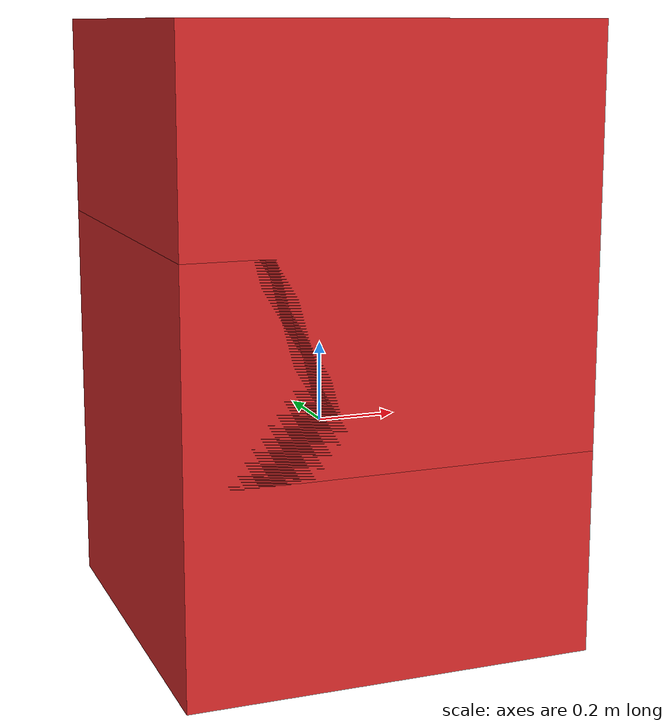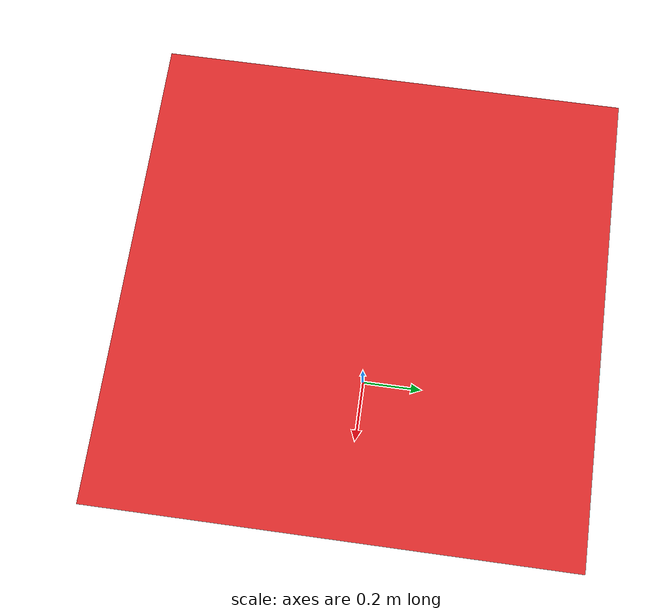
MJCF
<mujoco model="attach_model">
    <compiler meshdir="assets" texturedir="assets"/>

    <asset>
        <texture name="grid_texture" type="2d" file="grid.png"/>
        <material name="textured_material" texture="grid_texture"/>
        <mesh name="box" file="box.obj"/>
    </asset>

    <worldbody>
        <body name="base">
            <geom type="mesh" mesh="box" material="textured_material"/>
            <body name="child" pos="0 0 0.5">
                <joint type="hinge" axis="0 1 0"/>
                <geom type="mesh" mesh="box" material="textured_material"/>
            </body>
        </body>
    </worldbody>
</mujoco>
